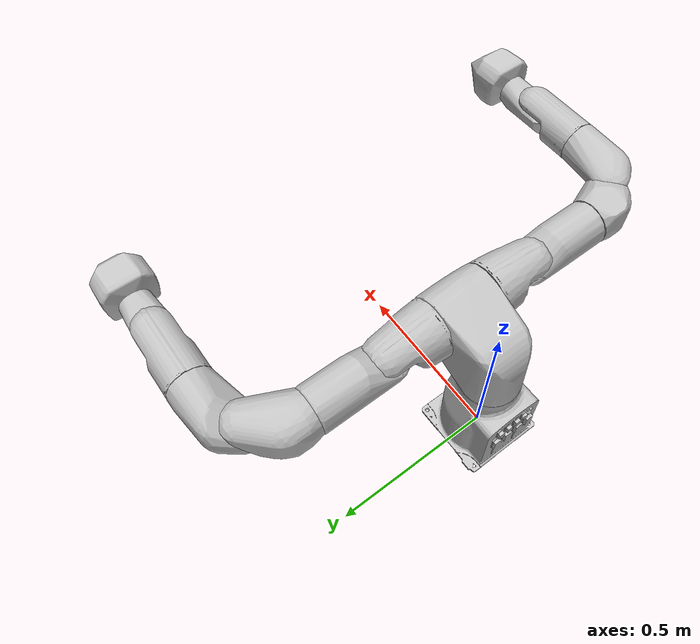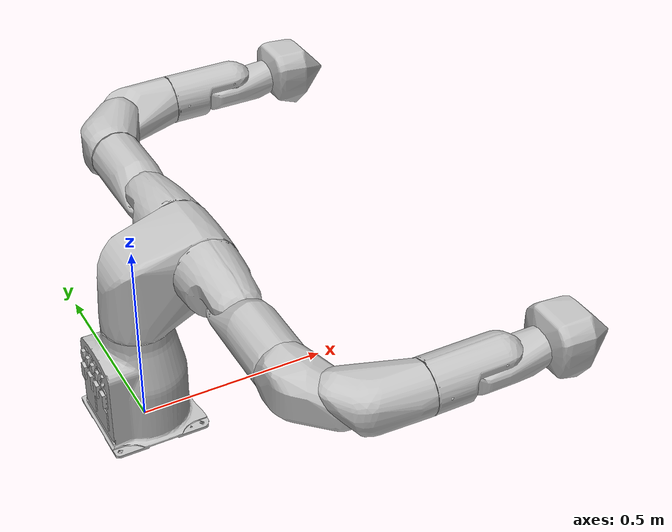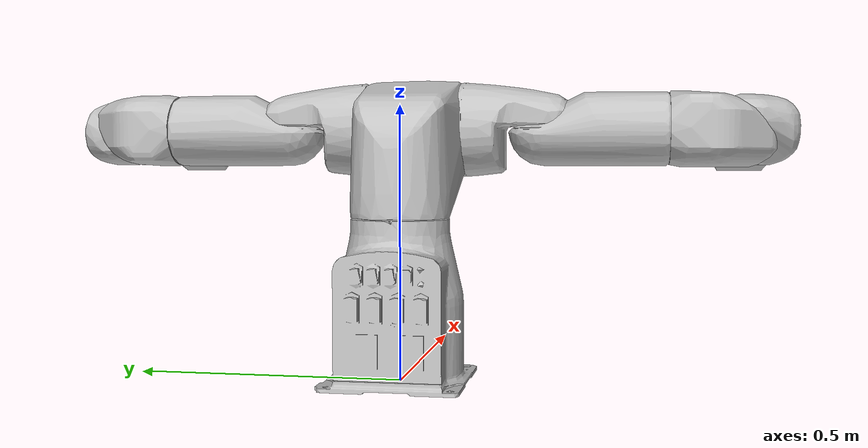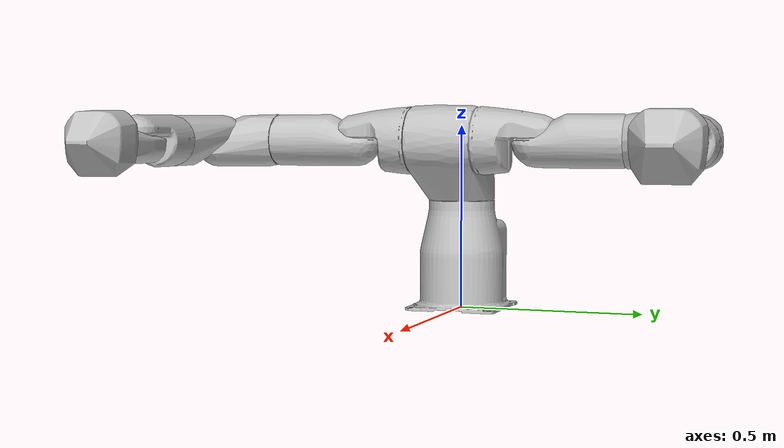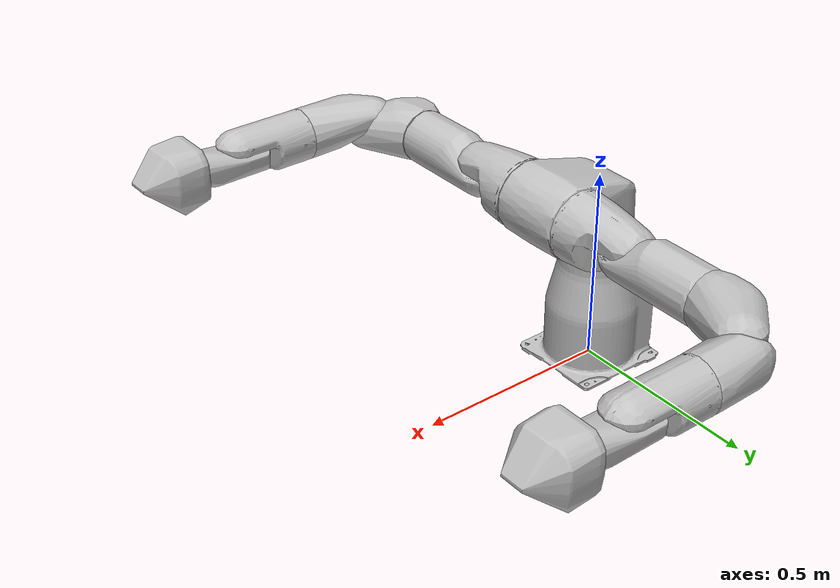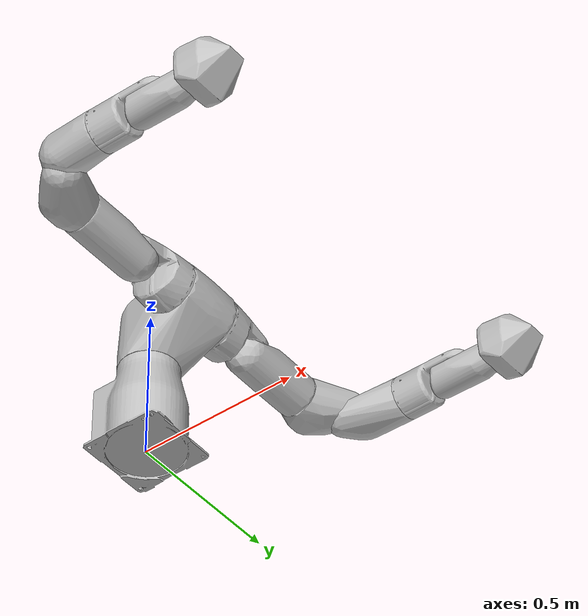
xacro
<?xml version="1.0" ?>

<robot name="motoman_bmda3_w_effs" xmlns:xacro="http://ros.org/wiki/xacro">
	<xacro:include filename="$(find motoman_bmda3_support)/urdf/bmda3_eff_macro.xacro" />
	<xacro:include filename="$(find motoman_bmda3_support)/urdf/bmda3_macro.xacro" />
	<xacro:bmda3 prefix=""/>
        <xacro:bmda3_eff prefix="right_"/>
        <xacro:bmda3_eff prefix="left_"/>

	<joint name="left_eff" type="fixed" >
          <parent link="left_tool0" />
          <child link="left_eff" />
          <origin xyz="0 0 0" rpy="0 0 0" />
          <axis xyz="0 0 1" />
        </joint>

       <joint name="right_eff" type="fixed">
          <parent link="right_tool0" />
          <child link="right_eff" />
          <origin xyz="0 0 0" rpy="0 0 0" />
          <axis xyz="0 0 1" />
       </joint>

</robot>

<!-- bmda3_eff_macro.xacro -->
<robot xmlns:xacro="http://ros.org/wiki/xacro">
  <xacro:macro name="bmda3_eff" params="prefix">
  <!-- link list -->

  <link
    name="${prefix}eff">
    <visual>
      <origin
        xyz="0 0 0"
        rpy="0 0 0" />
      <geometry>
        <mesh
          filename="package://motoman_bmda3_support/meshes/bmda3/visual/eff.stl" />
      </geometry>
      <material
        name="">
        <color
          rgba="0.752941176470588 0.752941176470588 0.752941176470588 1" />
      </material>
    </visual>
    <collision>
      <origin
        xyz="0 0 0"
        rpy="0 0 0" />
      <geometry>
        <mesh
          filename="package://motoman_bmda3_support/meshes/bmda3/collision/eff.stl" />
      </geometry>
    </collision>
  </link>

		<!-- end of joint list -->
	</xacro:macro>
</robot>

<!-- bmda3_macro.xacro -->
<robot xmlns:xacro="http://ros.org/wiki/xacro">
  <xacro:macro name="bmda3" params="prefix">
  <!-- link list   -->
	  <link name="${prefix}base_link">
		  <origin xyz="0 0 0" rpy="0 0 0"/>
  	</link>

    <link name="${prefix}base">
      <visual>
      <origin
        xyz="0 0 0"
        rpy="0 0 0" />
      <geometry>
        <mesh
          filename="package://motoman_bmda3_support/meshes/bmda3/visual/base.stl" />
      </geometry>
      <material
        name="">
        <color
          rgba="0.75294 0.75294 0.75294 1" />
      </material>
    </visual>
    <collision>
      <origin
        xyz="0 0 0"
        rpy="0 0 0" />
      <geometry>
        <mesh
          filename="package://motoman_bmda3_support/meshes/bmda3/collision/base.stl" />
      </geometry>
    </collision>
  </link>

  <link
    name="${prefix}torso_link_b1">
    <visual>
      <origin
        xyz="0 0 0"
        rpy="0 0 0" />
      <geometry>
        <mesh
          filename="package://motoman_bmda3_support/meshes/bmda3/visual/torso_link.stl" />
      </geometry>
      <material
        name="">
        <color
          rgba="0.75294 0.75294 0.75294 1" />
      </material>
    </visual>
    <collision>
      <origin
        xyz="0 0 0"
        rpy="0 0 0" />
      <geometry>
        <mesh
          filename="package://motoman_bmda3_support/meshes/bmda3/collision/torso_link.stl" />
      </geometry>
    </collision>
  </link>

  <link
    name="${prefix}right_link_l">
    <visual>
      <origin
        xyz="0 0 0"
        rpy="0 0 0" />
      <geometry>
        <mesh
          filename="package://motoman_bmda3_support/meshes/bmda3/visual/right_link_l.stl" />
      </geometry>
      <material
        name="">
        <color
          rgba="0.75294 0.75294 0.75294 1" />
      </material>
    </visual>
    <collision>
      <origin
        xyz="0 0 0"
        rpy="0 0 0" />
      <geometry>
        <mesh
          filename="package://motoman_bmda3_support/meshes/bmda3/collision/right_link_l.stl" />
      </geometry>
    </collision>
  </link>

  <link
    name="${prefix}right_link_e">
    <visual>
      <origin
        xyz="0 0 0"
        rpy="0 0 0" />
      <geometry>
        <mesh
          filename="package://motoman_bmda3_support/meshes/bmda3/visual/right_link_e.stl" />
      </geometry>
      <material
        name="">
        <color
          rgba="0.75294 0.75294 0.75294 1" />
      </material>
    </visual>
    <collision>
      <origin
        xyz="0 0 0"
        rpy="0 0 0" />
      <geometry>
        <mesh
          filename="package://motoman_bmda3_support/meshes/bmda3/collision/right_link_e.stl" />
      </geometry>
    </collision>
  </link>

  <link
    name="${prefix}right_link_u">
     <visual>
      <origin
        xyz="0 0 0"
        rpy="0 0 0" />
      <geometry>
        <mesh
          filename="package://motoman_bmda3_support/meshes/bmda3/visual/right_link_u.stl" />
      </geometry>
      <material
        name="">
        <color
          rgba="0.752941176470588 0.752941176470588 0.752941176470588 1" />
      </material>
    </visual>
    <collision>
      <origin
        xyz="0 0 0"
        rpy="0 0 0" />
      <geometry>
        <mesh
          filename="package://motoman_bmda3_support/meshes/bmda3/collision/right_link_u.stl" />
      </geometry>
    </collision>
  </link>

  <link
    name="${prefix}right_link_r">
    <visual>
      <origin
        xyz="0 0 0"
        rpy="0 0 0" />
      <geometry>
        <mesh
          filename="package://motoman_bmda3_support/meshes/bmda3/visual/right_link_r.stl" />
      </geometry>
      <material
        name="">
        <color
          rgba="0.752941176470588 0.752941176470588 0.752941176470588 1" />
      </material>
    </visual>
    <collision>
      <origin
        xyz="0 0 0"
        rpy="0 0 0" />
      <geometry>
        <mesh
          filename="package://motoman_bmda3_support/meshes/bmda3/collision/right_link_r.stl" />
      </geometry>
    </collision>
  </link>

  <link
    name="${prefix}right_link_b">
    <visual>
      <origin
        xyz="0 0 0"
        rpy="0 0 0" />
      <geometry>
        <mesh
          filename="package://motoman_bmda3_support/meshes/bmda3/visual/right_link_b.stl" />
      </geometry>
      <material
        name="">
        <color
          rgba="0.752941176470588 0.752941176470588 0.752941176470588 1" />
      </material>
    </visual>
    <collision>
      <origin
        xyz="0 0 0"
        rpy="0 0 0" />
      <geometry>
        <mesh
          filename="package://motoman_bmda3_support/meshes/bmda3/collision/right_link_b.stl" />
      </geometry>
    </collision>
  </link>

  <link
    name="${prefix}right_link_t">
    <visual>
      <origin
        xyz="0 0 0"
        rpy="0 0 0" />
      <geometry>
        <mesh
          filename="package://motoman_bmda3_support/meshes/bmda3/visual/right_link_t.stl" />
      </geometry>
      <material
        name="">
        <color
          rgba="0.752941176470588 0.752941176470588 0.752941176470588 1" />
      </material>
    </visual>
    <collision>
      <origin
        xyz="0 0 0"
        rpy="0 0 0" />
      <geometry>
        <mesh
          filename="package://motoman_bmda3_support/meshes/bmda3/collision/right_link_t.stl" />
      </geometry>
    </collision>
  </link>

  <link name="${prefix}right_tool0" />

  <!-- Note that the redundant torso link b2 is introduced to match the phantom joint in the controller -->
  <link
    name="${prefix}torso_link_b2">
    <visual>
      <origin
        xyz="0 0 0"
        rpy="0 0 0" />
      <geometry>
        <mesh
          filename="package://motoman_bmda3_support/meshes/bmda3/visual/torso_link.stl" />
      </geometry>
      <material
        name="">
        <color
          rgba="0.75294 0.75294 0.75294 1" />
      </material>
    </visual>
    <collision>
      <origin
        xyz="0 0 0"
        rpy="0 0 0" />
      <geometry>
        <mesh
          filename="package://motoman_bmda3_support/meshes/bmda3/collision/torso_link.stl" />
      </geometry>
    </collision>
  </link>
  <link
    name="${prefix}left_link_l">
    <visual>
      <origin
        xyz="0 0 0"
        rpy="0 0 0" />
      <geometry>
        <mesh
          filename="package://motoman_bmda3_support/meshes/bmda3/visual/left_link_l.stl" />
      </geometry>
      <material
        name="">
        <color
          rgba="0.752941176470588 0.752941176470588 0.752941176470588 1" />
      </material>
    </visual>
    <collision>
      <origin
        xyz="0 0 0"
        rpy="0 0 0" />
      <geometry>
        <mesh
          filename="package://motoman_bmda3_support/meshes/bmda3/collision/left_link_l.stl" />
      </geometry>
    </collision>
  </link>

  <link
    name="${prefix}left_link_e">
    <visual>
      <origin
        xyz="0 0 0"
        rpy="0 0 0" />
      <geometry>
        <mesh
          filename="package://motoman_bmda3_support/meshes/bmda3/visual/left_link_e.stl" />
      </geometry>
      <material
        name="">
        <color
          rgba="0.752941176470588 0.752941176470588 0.752941176470588 1" />
      </material>
    </visual>
    <collision>
      <origin
        xyz="0 0 0"
        rpy="0 0 0" />
      <geometry>
        <mesh
          filename="package://motoman_bmda3_support/meshes/bmda3/collision/left_link_e.stl" />
      </geometry>
    </collision>
  </link>

  <link
    name="${prefix}left_link_u">
    <visual>
      <origin
        xyz="0 0 0"
        rpy="0 0 0" />
      <geometry>
        <mesh
          filename="package://motoman_bmda3_support/meshes/bmda3/visual/left_link_u.stl" />
      </geometry>
      <material
        name="">
        <color
          rgba="0.752941176470588 0.752941176470588 0.752941176470588 1" />
      </material>
    </visual>
    <collision>
      <origin
        xyz="0 0 0"
        rpy="0 0 0" />
      <geometry>
        <mesh
          filename="package://motoman_bmda3_support/meshes/bmda3/collision/left_link_u.stl" />
      </geometry>
    </collision>
  </link>

  <link
    name="${prefix}left_link_r">
    <visual>
      <origin
        xyz="0 0 0"
        rpy="0 0 0" />
      <geometry>
        <mesh
          filename="package://motoman_bmda3_support/meshes/bmda3/visual/left_link_r.stl" />
      </geometry>
      <material
        name="">
        <color
          rgba="0.752941176470588 0.752941176470588 0.752941176470588 1" />
      </material>
    </visual>
    <collision>
      <origin
        xyz="0 0 0"
        rpy="0 0 0" />
      <geometry>
        <mesh
          filename="package://motoman_bmda3_support/meshes/bmda3/collision/left_link_r.stl" />
      </geometry>
    </collision>
  </link>

  <link
    name="${prefix}left_link_b">
    <visual>
      <origin
        xyz="0 0 0"
        rpy="0 0 0" />
      <geometry>
        <mesh
          filename="package://motoman_bmda3_support/meshes/bmda3/visual/left_link_b.stl" />
      </geometry>
      <material
        name="">
        <color
          rgba="0.752941176470588 0.752941176470588 0.752941176470588 1" />
      </material>
    </visual>
    <collision>
      <origin
        xyz="0 0 0"
        rpy="0 0 0" />
      <geometry>
        <mesh
          filename="package://motoman_bmda3_support/meshes/bmda3/collision/left_link_b.stl" />
      </geometry>
    </collision>
  </link>

  <link
    name="${prefix}left_link_t">
    <visual>
      <origin
        xyz="0 0 0"
        rpy="0 0 0" />
      <geometry>
        <mesh
          filename="package://motoman_bmda3_support/meshes/bmda3/visual/left_link_t.stl" />
      </geometry>
      <material
        name="">
        <color
          rgba="0.752941176470588 0.752941176470588 0.752941176470588 1" />
      </material>
    </visual>
    <collision>
      <origin
        xyz="0 0 0"
        rpy="0 0 0" />
      <geometry>
        <mesh
          filename="package://motoman_bmda3_support/meshes/bmda3/collision/left_link_t.stl" />
      </geometry>
    </collision>
  </link>

  <link name="${prefix}left_tool0"/>

    <!--end of link list -->
    <!-- joint list -->
    <joint name="${prefix}base_link-base" type="fixed">
   	<origin xyz="0 0 0" rpy="0 0 0"/>
   	<parent link="${prefix}base_link" />
   	<child link="${prefix}base"/>
  	</joint>
    <joint name="${prefix}torso_joint_b1" type="revolute">
          <parent link="${prefix}base" />
          <child  link="${prefix}torso_link_b1" />
          <origin xyz="0 0 0.3305" rpy="0 0 0" />
          <axis xyz="0 0 1" />
          <limit lower="-3.1415" upper="3.1415" effort="0" velocity="2.27" />
    </joint>
    <joint name="${prefix}right_joint_1_s" type="revolute">
          <parent link="${prefix}torso_link_b1" />
          <child link="${prefix}right_link_l" />
          <origin xyz="0.15002 -0.099 0.12951" rpy="0 0 0" />
          <axis xyz="0 1 0" />
          <limit lower="-1.570" upper="3.1415" effort="0" velocity="2.97" />
    </joint>
    <joint name="${prefix}right_joint_2_l" type="revolute">
          <parent link="${prefix}right_link_l" />
          <child link="${prefix}right_link_e" />
          <origin xyz="0 -0.151 0" rpy="0 0 0" />
          <axis xyz="0 0 1" />
          <limit lower="-1.745" upper="1.745" effort="0" velocity="2.62" />
    </joint>
    <joint name="${prefix}right_joint_3_e" type="revolute">
          <parent link="${prefix}right_link_e" />
          <child link="${prefix}right_link_u" />
          <origin xyz="0 -0.23549999999989 0" rpy="0 0 0" />
          <axis xyz="0 1 0" />
          <limit lower="-2.966" upper="2.966" effort="0" velocity="2.97" />
    </joint>
    <joint name="${prefix}right_joint_4_u" type="revolute">
          <parent link="${prefix}right_link_u" />
          <child link="${prefix}right_link_r" />
          <origin xyz="0.065002 -0.1445 0" rpy="0 0 0" />
          <axis xyz="0 0 -1" />
          <limit lower="-1.396" upper="0.7504" effort="0" velocity="2.97" />
    </joint>
    <joint name="${prefix}right_joint_5_r" type="revolute">
          <parent link="${prefix}right_link_r" />
          <child link="${prefix}right_link_b" />
          <origin xyz="0.35997 -0.05 0" rpy="0 0 0" />
          <axis xyz="1 0 0" />
          <limit lower="-3.1415" upper="3.1415" effort="0" velocity="3.49" />
    </joint>
    <joint name="${prefix}right_joint_6_b" type="revolute">
          <parent link="${prefix}right_link_b" />
          <child link="${prefix}right_link_t" />
          <origin xyz="0 0 0" rpy="0 0 0" />
          <axis xyz="0 0 -1" />
          <limit lower="-1.9198" upper="1.9198" effort="0" velocity="3.49" />
    </joint>
    <joint name="${prefix}right_joint_7_t" type="revolute">
          <parent link="${prefix}right_link_t" />
          <child link="${prefix}right_tool0" />
          <origin xyz="0.138 0 0" rpy="0 0 0"  />
          <axis xyz="1 0 0" />
          <limit lower="-4.712" upper="4.712" effort="0" velocity="6.11" />
    </joint>

    <!-- Note that the redundant torso joint b2 is introduced to match the phantom joint in the controller -->
    <joint name="${prefix}torso_joint_b2" type="revolute">
          <parent link="${prefix}base" />
          <child  link="${prefix}torso_link_b2" />
          <origin xyz="0 0 0.3305" rpy="0 0 0" />
          <axis xyz="0 0 1" />
          <limit lower="-3.1415" upper="3.1415" effort="0" velocity="2.27" />
    </joint>
    <joint name="${prefix}left_joint_1_s" type="revolute">
          <parent link="${prefix}torso_link_b1" />
          <child link="${prefix}left_link_l" />
          <origin xyz="0.15003 0.099 0.1295" rpy="0 0 0" />
          <axis xyz="0 1 0" />
          <limit lower="-1.570" upper="3.1415" effort="0" velocity="2.97" />
    </joint>
    <joint name="${prefix}left_joint_2_l" type="revolute">
          <parent link="${prefix}left_link_l" />
          <child link="${prefix}left_link_e" />
          <origin xyz="0 0.151 0" rpy="0 0 0" />
          <axis xyz="0 0 -1" />
          <limit lower="-1.745" upper="1.745" effort="0" velocity="2.62" />
    </joint>
    <joint name="${prefix}left_joint_3_e" type="revolute">
          <parent link="${prefix}left_link_e" />
          <child link="${prefix}left_link_u" />
          <origin xyz="0 0.23549999999989 0" rpy="0 0 0" />
          <axis xyz="0 1 0" />
        <limit lower="-2.966" upper="2.966" effort="0" velocity="2.97" />
    </joint>
    <joint name="${prefix}left_joint_4_u" type="revolute">
          <parent link="${prefix}left_link_u" />
          <child link="${prefix}left_link_r" />
          <origin xyz="0.065 0.1445 0" rpy="0 0 0" />
          <axis xyz="0 0 1" />
          <limit lower="-1.396" upper="0.7504" effort="0" velocity="2.97" />
    </joint>
    <joint name="${prefix}left_joint_5_r" type="revolute">
          <parent link="${prefix}left_link_r" />
          <child link="${prefix}left_link_b" />
          <origin xyz="0.35997 0.05 0" rpy="0 0 0" />
          <axis xyz="-1 0 0" />
          <limit lower="-3.1415" upper="3.1415" effort="0" velocity="3.49" />
    </joint>
    <joint name="${prefix}left_joint_6_b" type="revolute">
          <parent link="${prefix}left_link_b" />
          <child link="${prefix}left_link_t" />
          <origin xyz="0 0 0" rpy="0 0 0" />
          <axis xyz="0 0 1" />
          <limit lower="-1.9198" upper="1.9198" effort="0" velocity="3.49" />
    </joint>
     <joint name="${prefix}left_joint_7_t" type="revolute">
          <parent link="${prefix}left_link_t" />
          <child link="${prefix}left_tool0" />
          <origin xyz="0.138 0 0" rpy="0 0 0" />
          <axis xyz="-1 0 0" />
          <limit lower="-4.712" upper="4.712" effort="0" velocity="6.11" />
    </joint>

		<!-- end of joint list -->
	</xacro:macro>
</robot>
